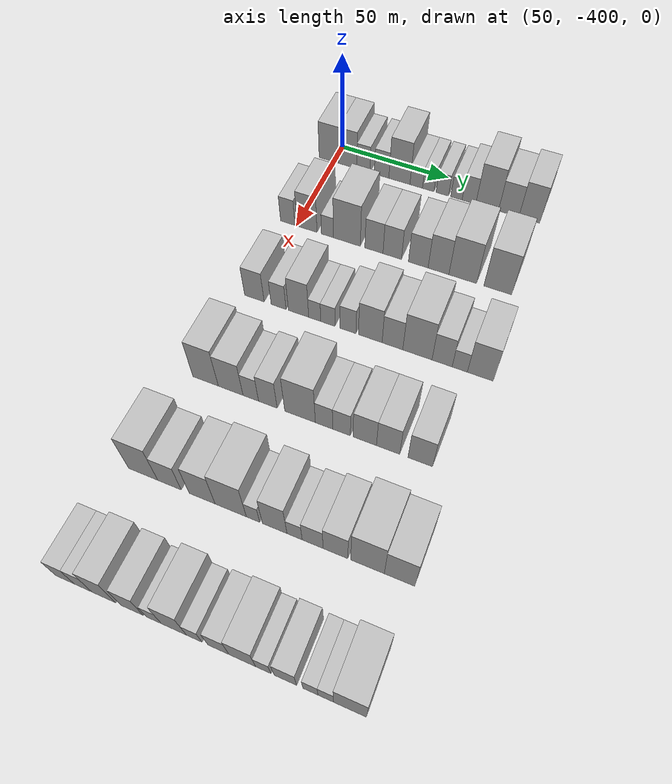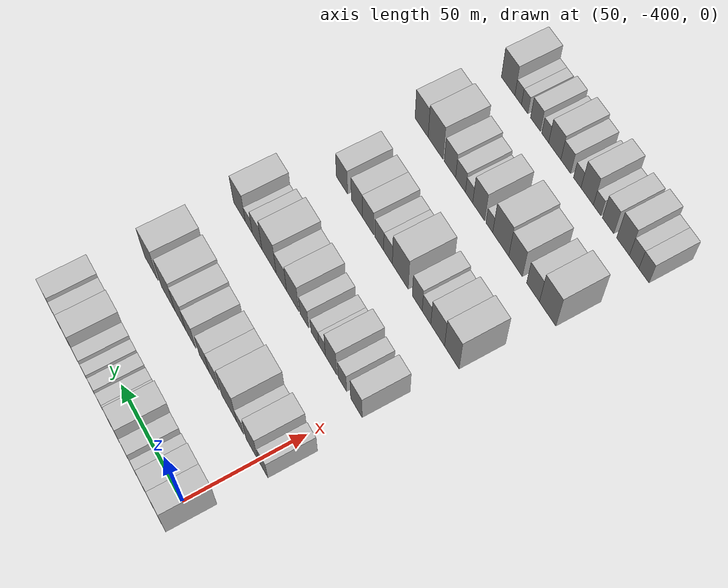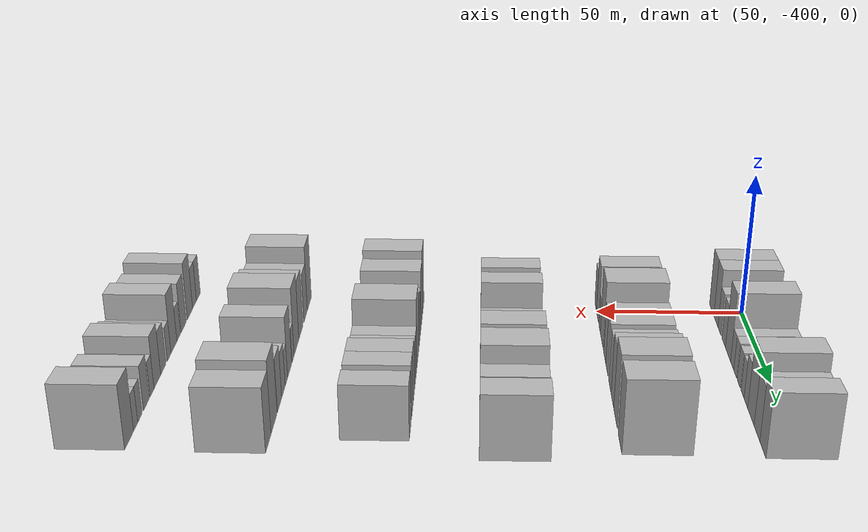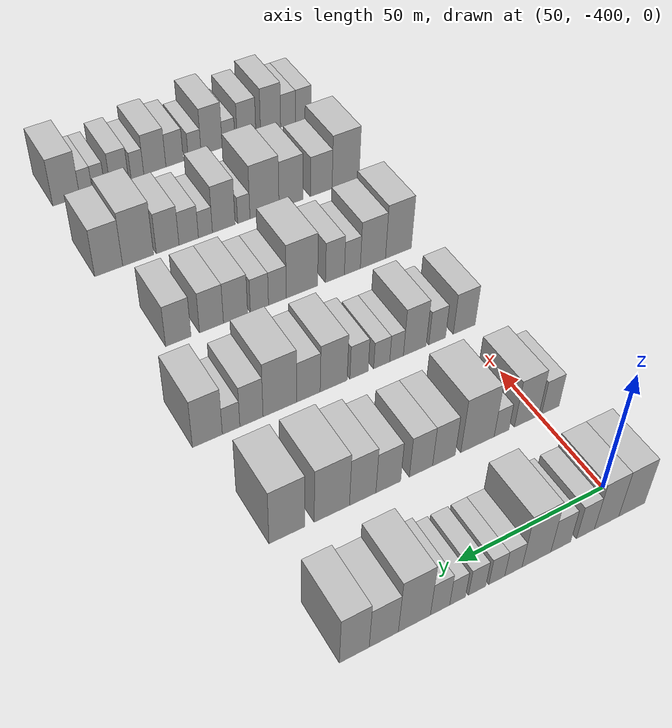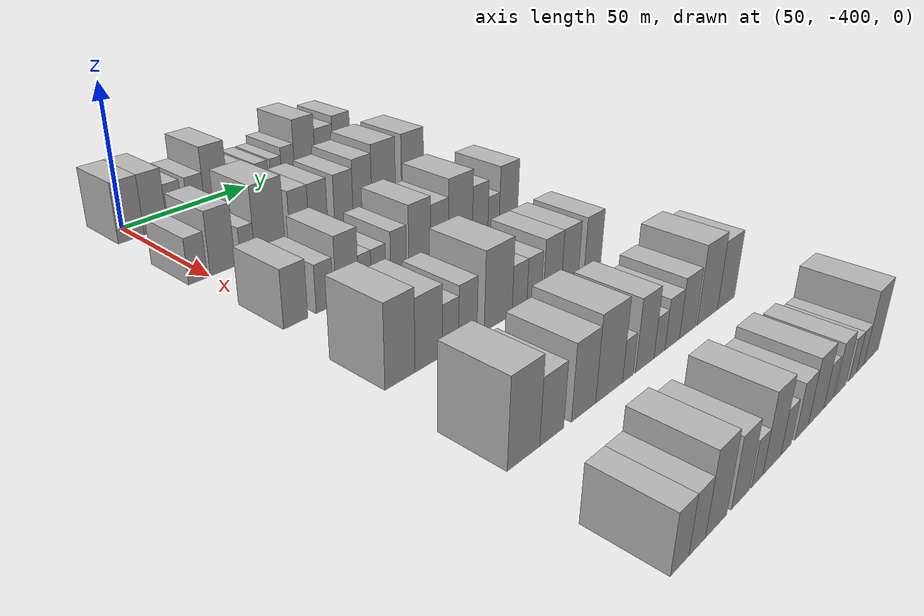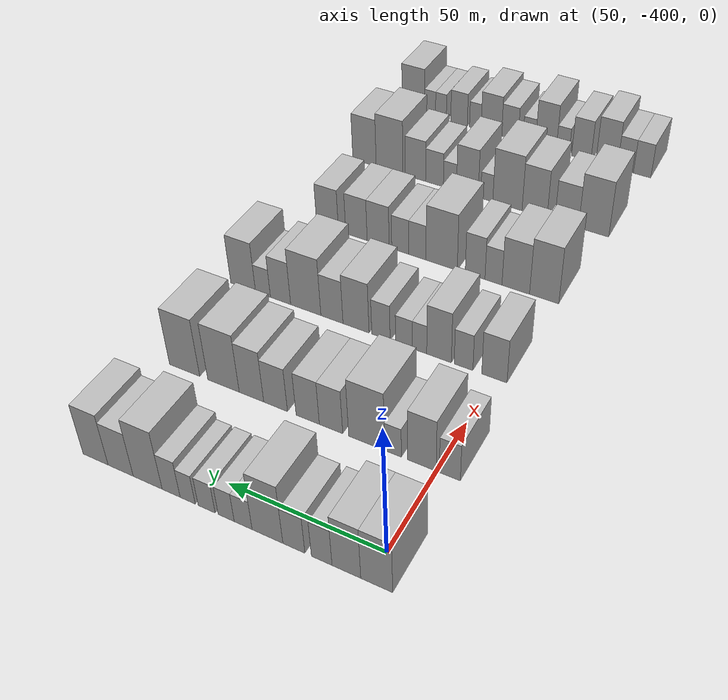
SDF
<sdf version="1.6">
 <world name="default">
  <model name="building_25">
   <static>1</static>
   <pose>50.0000 -402.3406 0 0.000000 0.000000 0.000000</pose>
   <link name="link">
    <pose>0 0 10.50 0 0 0</pose>
    <collision name="collision"><geometry><box><size>20.0000 9.3569 21.0000</size></box></geometry></collision>
    <visual name="visual">
     <cast_shadows>0</cast_shadows>
     <geometry><box><size>20.0000 9.3569 21.0000</size></box></geometry>
     <material>
      <script>
       <uri>model://HANNAS_wall/materials/scripts</uri>
       <uri>model://HANNAS_wall/materials/textures</uri>
       <name>vrc/HANNAS_wall</name>
      </script>
     </material>
    </visual>
   </link>
  </model>
  <model name="building_26">
   <static>1</static>
   <pose>50.0000 -393.3666 0 0.000000 0.000000 0.000000</pose>
   <link name="link">
    <pose>0 0 10.50 0 0 0</pose>
    <collision name="collision"><geometry><box><size>20.0000 8.5912 21.0000</size></box></geometry></collision>
    <visual name="visual">
     <cast_shadows>0</cast_shadows>
     <geometry><box><size>20.0000 8.5912 21.0000</size></box></geometry>
     <material>
      <script>
       <uri>model://HANNAS_wall/materials/scripts</uri>
       <uri>model://HANNAS_wall/materials/textures</uri>
       <name>vrc/HANNAS_wall</name>
      </script>
     </material>
    </visual>
   </link>
  </model>
  <model name="building_27">
   <static>1</static>
   <pose>50.0000 -385.9371 0 0.000000 0.000000 0.000000</pose>
   <link name="link">
    <pose>0 0 7.50 0 0 0</pose>
    <collision name="collision"><geometry><box><size>20.0000 6.2679 15.0000</size></box></geometry></collision>
    <visual name="visual">
     <cast_shadows>0</cast_shadows>
     <geometry><box><size>20.0000 6.2679 15.0000</size></box></geometry>
     <material>
      <script>
       <uri>model://HANNAS_wall/materials/scripts</uri>
       <uri>model://HANNAS_wall/materials/textures</uri>
       <name>vrc/HANNAS_wall</name>
      </script>
     </material>
    </visual>
   </link>
  </model>
  <model name="building_28">
   <static>1</static>
   <pose>50.0000 -377.3876 0 0.000000 0.000000 0.000000</pose>
   <link name="link">
    <pose>0 0 7.50 0 0 0</pose>
    <collision name="collision"><geometry><box><size>20.0000 6.8310 15.0000</size></box></geometry></collision>
    <visual name="visual">
     <cast_shadows>0</cast_shadows>
     <geometry><box><size>20.0000 6.8310 15.0000</size></box></geometry>
     <material>
      <script>
       <uri>model://HANNAS_wall/materials/scripts</uri>
       <uri>model://HANNAS_wall/materials/textures</uri>
       <name>vrc/HANNAS_wall</name>
      </script>
     </material>
    </visual>
   </link>
  </model>
  <model name="building_29">
   <static>1</static>
   <pose>50.0000 -369.1044 0 0.000000 0.000000 0.000000</pose>
   <link name="link">
    <pose>0 0 12.00 0 0 0</pose>
    <collision name="collision"><geometry><box><size>20.0000 9.7356 24.0000</size></box></geometry></collision>
    <visual name="visual">
     <cast_shadows>0</cast_shadows>
     <geometry><box><size>20.0000 9.7356 24.0000</size></box></geometry>
     <material>
      <script>
       <uri>model://HANNAS_wall/materials/scripts</uri>
       <uri>model://HANNAS_wall/materials/textures</uri>
       <name>vrc/HANNAS_wall</name>
      </script>
     </material>
    </visual>
   </link>
  </model>
  <model name="building_30">
   <static>1</static>
   <pose>50.0000 -361.3651 0 0.000000 0.000000 0.000000</pose>
   <link name="link">
    <pose>0 0 6.00 0 0 0</pose>
    <collision name="collision"><geometry><box><size>20.0000 5.7431 12.0000</size></box></geometry></collision>
    <visual name="visual">
     <cast_shadows>0</cast_shadows>
     <geometry><box><size>20.0000 5.7431 12.0000</size></box></geometry>
     <material>
      <script>
       <uri>model://HANNAS_wall/materials/scripts</uri>
       <uri>model://HANNAS_wall/materials/textures</uri>
       <name>vrc/HANNAS_wall</name>
      </script>
     </material>
    </visual>
   </link>
  </model>
  <model name="building_31">
   <static>1</static>
   <pose>50.0000 -355.8773 0 0.000000 0.000000 0.000000</pose>
   <link name="link">
    <pose>0 0 6.00 0 0 0</pose>
    <collision name="collision"><geometry><box><size>20.0000 5.2324 12.0000</size></box></geometry></collision>
    <visual name="visual">
     <cast_shadows>0</cast_shadows>
     <geometry><box><size>20.0000 5.2324 12.0000</size></box></geometry>
     <material>
      <script>
       <uri>model://HANNAS_wall/materials/scripts</uri>
       <uri>model://HANNAS_wall/materials/textures</uri>
       <name>vrc/HANNAS_wall</name>
      </script>
     </material>
    </visual>
   </link>
  </model>
  <model name="building_32">
   <static>1</static>
   <pose>50.0000 -349.4674 0 0.000000 0.000000 0.000000</pose>
   <link name="link">
    <pose>0 0 6.00 0 0 0</pose>
    <collision name="collision"><geometry><box><size>20.0000 5.5874 12.0000</size></box></geometry></collision>
    <visual name="visual">
     <cast_shadows>0</cast_shadows>
     <geometry><box><size>20.0000 5.5874 12.0000</size></box></geometry>
     <material>
      <script>
       <uri>model://HANNAS_wall/materials/scripts</uri>
       <uri>model://HANNAS_wall/materials/textures</uri>
       <name>vrc/HANNAS_wall</name>
      </script>
     </material>
    </visual>
   </link>
  </model>
  <model name="building_33">
   <static>1</static>
   <pose>50.0000 -343.1488 0 0.000000 0.000000 0.000000</pose>
   <link name="link">
    <pose>0 0 6.00 0 0 0</pose>
    <collision name="collision"><geometry><box><size>20.0000 5.0498 12.0000</size></box></geometry></collision>
    <visual name="visual">
     <cast_shadows>0</cast_shadows>
     <geometry><box><size>20.0000 5.0498 12.0000</size></box></geometry>
     <material>
      <script>
       <uri>model://HANNAS_wall/materials/scripts</uri>
       <uri>model://HANNAS_wall/materials/textures</uri>
       <name>vrc/HANNAS_wall</name>
      </script>
     </material>
    </visual>
   </link>
  </model>
  <model name="building_34">
   <static>1</static>
   <pose>50.0000 -337.5745 0 0.000000 0.000000 0.000000</pose>
   <link name="link">
    <pose>0 0 7.50 0 0 0</pose>
    <collision name="collision"><geometry><box><size>20.0000 6.0989 15.0000</size></box></geometry></collision>
    <visual name="visual">
     <cast_shadows>0</cast_shadows>
     <geometry><box><size>20.0000 6.0989 15.0000</size></box></geometry>
     <material>
      <script>
       <uri>model://HANNAS_wall/materials/scripts</uri>
       <uri>model://HANNAS_wall/materials/textures</uri>
       <name>vrc/HANNAS_wall</name>
      </script>
     </material>
    </visual>
   </link>
  </model>
  <model name="building_35">
   <static>1</static>
   <pose>50.0000 -329.5333 0 0.000000 0.000000 0.000000</pose>
   <link name="link">
    <pose>0 0 12.00 0 0 0</pose>
    <collision name="collision"><geometry><box><size>20.0000 9.9835 24.0000</size></box></geometry></collision>
    <visual name="visual">
     <cast_shadows>0</cast_shadows>
     <geometry><box><size>20.0000 9.9835 24.0000</size></box></geometry>
     <material>
      <script>
       <uri>model://HANNAS_wall/materials/scripts</uri>
       <uri>model://HANNAS_wall/materials/textures</uri>
       <name>vrc/HANNAS_wall</name>
      </script>
     </material>
    </visual>
   </link>
  </model>
  <model name="building_36">
   <static>1</static>
   <pose>50.0000 -320.1025 0 0.000000 0.000000 0.000000</pose>
   <link name="link">
    <pose>0 0 9.00 0 0 0</pose>
    <collision name="collision"><geometry><box><size>20.0000 8.8781 18.0000</size></box></geometry></collision>
    <visual name="visual">
     <cast_shadows>0</cast_shadows>
     <geometry><box><size>20.0000 8.8781 18.0000</size></box></geometry>
     <material>
      <script>
       <uri>model://HANNAS_wall/materials/scripts</uri>
       <uri>model://HANNAS_wall/materials/textures</uri>
       <name>vrc/HANNAS_wall</name>
      </script>
     </material>
    </visual>
   </link>
  </model>
  <model name="building_37">
   <static>1</static>
   <pose>50.0000 -311.1957 0 0.000000 0.000000 0.000000</pose>
   <link name="link">
    <pose>0 0 10.50 0 0 0</pose>
    <collision name="collision"><geometry><box><size>20.0000 8.9355 21.0000</size></box></geometry></collision>
    <visual name="visual">
     <cast_shadows>0</cast_shadows>
     <geometry><box><size>20.0000 8.9355 21.0000</size></box></geometry>
     <material>
      <script>
       <uri>model://HANNAS_wall/materials/scripts</uri>
       <uri>model://HANNAS_wall/materials/textures</uri>
       <name>vrc/HANNAS_wall</name>
      </script>
     </material>
    </visual>
   </link>
  </model>
  <model name="building_164">
   <static>1</static>
   <pose>90.0000 -404.1304 0 0.000000 0.000000 0.000000</pose>
   <link name="link">
    <pose>0 0 7.50 0 0 0</pose>
    <collision name="collision"><geometry><box><size>20.0000 6.5334 15.0000</size></box></geometry></collision>
    <visual name="visual">
     <cast_shadows>0</cast_shadows>
     <geometry><box><size>20.0000 6.5334 15.0000</size></box></geometry>
     <material>
      <script>
       <uri>model://HANNAS_wall/materials/scripts</uri>
       <uri>model://HANNAS_wall/materials/textures</uri>
       <name>vrc/HANNAS_wall</name>
      </script>
     </material>
    </visual>
   </link>
  </model>
  <model name="building_165">
   <static>1</static>
   <pose>90.0000 -395.3255 0 0.000000 0.000000 0.000000</pose>
   <link name="link">
    <pose>0 0 10.50 0 0 0</pose>
    <collision name="collision"><geometry><box><size>20.0000 9.0763 21.0000</size></box></geometry></collision>
    <visual name="visual">
     <cast_shadows>0</cast_shadows>
     <geometry><box><size>20.0000 9.0763 21.0000</size></box></geometry>
     <material>
      <script>
       <uri>model://HANNAS_wall/materials/scripts</uri>
       <uri>model://HANNAS_wall/materials/textures</uri>
       <name>vrc/HANNAS_wall</name>
      </script>
     </material>
    </visual>
   </link>
  </model>
  <model name="building_166">
   <static>1</static>
   <pose>90.0000 -386.1036 0 0.000000 0.000000 0.000000</pose>
   <link name="link">
    <pose>0 0 6.00 0 0 0</pose>
    <collision name="collision"><geometry><box><size>20.0000 5.3674 12.0000</size></box></geometry></collision>
    <visual name="visual">
     <cast_shadows>0</cast_shadows>
     <geometry><box><size>20.0000 5.3674 12.0000</size></box></geometry>
     <material>
      <script>
       <uri>model://HANNAS_wall/materials/scripts</uri>
       <uri>model://HANNAS_wall/materials/textures</uri>
       <name>vrc/HANNAS_wall</name>
      </script>
     </material>
    </visual>
   </link>
  </model>
  <model name="building_167">
   <static>1</static>
   <pose>90.0000 -377.4563 0 0.000000 0.000000 0.000000</pose>
   <link name="link">
    <pose>0 0 12.00 0 0 0</pose>
    <collision name="collision"><geometry><box><size>20.0000 11.9272 24.0000</size></box></geometry></collision>
    <visual name="visual">
     <cast_shadows>0</cast_shadows>
     <geometry><box><size>20.0000 11.9272 24.0000</size></box></geometry>
     <material>
      <script>
       <uri>model://HANNAS_wall/materials/scripts</uri>
       <uri>model://HANNAS_wall/materials/textures</uri>
       <name>vrc/HANNAS_wall</name>
      </script>
     </material>
    </visual>
   </link>
  </model>
  <model name="building_168">
   <static>1</static>
   <pose>90.0000 -365.5362 0 0.000000 0.000000 0.000000</pose>
   <link name="link">
    <pose>0 0 9.00 0 0 0</pose>
    <collision name="collision"><geometry><box><size>20.0000 7.9130 18.0000</size></box></geometry></collision>
    <visual name="visual">
     <cast_shadows>0</cast_shadows>
     <geometry><box><size>20.0000 7.9130 18.0000</size></box></geometry>
     <material>
      <script>
       <uri>model://HANNAS_wall/materials/scripts</uri>
       <uri>model://HANNAS_wall/materials/textures</uri>
       <name>vrc/HANNAS_wall</name>
      </script>
     </material>
    </visual>
   </link>
  </model>
  <model name="building_169">
   <static>1</static>
   <pose>90.0000 -357.5903 0 0.000000 0.000000 0.000000</pose>
   <link name="link">
    <pose>0 0 9.00 0 0 0</pose>
    <collision name="collision"><geometry><box><size>20.0000 7.9788 18.0000</size></box></geometry></collision>
    <visual name="visual">
     <cast_shadows>0</cast_shadows>
     <geometry><box><size>20.0000 7.9788 18.0000</size></box></geometry>
     <material>
      <script>
       <uri>model://HANNAS_wall/materials/scripts</uri>
       <uri>model://HANNAS_wall/materials/textures</uri>
       <name>vrc/HANNAS_wall</name>
      </script>
     </material>
    </visual>
   </link>
  </model>
  <model name="building_170">
   <static>1</static>
   <pose>90.0000 -346.4264 0 0.000000 0.000000 0.000000</pose>
   <link name="link">
    <pose>0 0 9.00 0 0 0</pose>
    <collision name="collision"><geometry><box><size>20.0000 8.3491 18.0000</size></box></geometry></collision>
    <visual name="visual">
     <cast_shadows>0</cast_shadows>
     <geometry><box><size>20.0000 8.3491 18.0000</size></box></geometry>
     <material>
      <script>
       <uri>model://HANNAS_wall/materials/scripts</uri>
       <uri>model://HANNAS_wall/materials/textures</uri>
       <name>vrc/HANNAS_wall</name>
      </script>
     </material>
    </visual>
   </link>
  </model>
  <model name="building_171">
   <static>1</static>
   <pose>90.0000 -337.8645 0 0.000000 0.000000 0.000000</pose>
   <link name="link">
    <pose>0 0 10.50 0 0 0</pose>
    <collision name="collision"><geometry><box><size>20.0000 8.7746 21.0000</size></box></geometry></collision>
    <visual name="visual">
     <cast_shadows>0</cast_shadows>
     <geometry><box><size>20.0000 8.7746 21.0000</size></box></geometry>
     <material>
      <script>
       <uri>model://HANNAS_wall/materials/scripts</uri>
       <uri>model://HANNAS_wall/materials/textures</uri>
       <name>vrc/HANNAS_wall</name>
      </script>
     </material>
    </visual>
   </link>
  </model>
  <model name="building_172">
   <static>1</static>
   <pose>90.0000 -327.7320 0 0.000000 0.000000 0.000000</pose>
   <link name="link">
    <pose>0 0 12.00 0 0 0</pose>
    <collision name="collision"><geometry><box><size>20.0000 11.4905 24.0000</size></box></geometry></collision>
    <visual name="visual">
     <cast_shadows>0</cast_shadows>
     <geometry><box><size>20.0000 11.4905 24.0000</size></box></geometry>
     <material>
      <script>
       <uri>model://HANNAS_wall/materials/scripts</uri>
       <uri>model://HANNAS_wall/materials/textures</uri>
       <name>vrc/HANNAS_wall</name>
      </script>
     </material>
    </visual>
   </link>
  </model>
  <model name="building_173">
   <static>1</static>
   <pose>90.0000 -313.3235 0 0.000000 0.000000 0.000000</pose>
   <link name="link">
    <pose>0 0 12.00 0 0 0</pose>
    <collision name="collision"><geometry><box><size>20.0000 11.3266 24.0000</size></box></geometry></collision>
    <visual name="visual">
     <cast_shadows>0</cast_shadows>
     <geometry><box><size>20.0000 11.3266 24.0000</size></box></geometry>
     <material>
      <script>
       <uri>model://HANNAS_wall/materials/scripts</uri>
       <uri>model://HANNAS_wall/materials/textures</uri>
       <name>vrc/HANNAS_wall</name>
      </script>
     </material>
    </visual>
   </link>
  </model>
  <model name="building_303">
   <static>1</static>
   <pose>130.0000 -400.1069 0 0.000000 0.000000 0.000000</pose>
   <link name="link">
    <pose>0 0 9.00 0 0 0</pose>
    <collision name="collision"><geometry><box><size>20.0000 8.4470 18.0000</size></box></geometry></collision>
    <visual name="visual">
     <cast_shadows>0</cast_shadows>
     <geometry><box><size>20.0000 8.4470 18.0000</size></box></geometry>
     <material>
      <script>
       <uri>model://HANNAS_wall/materials/scripts</uri>
       <uri>model://HANNAS_wall/materials/textures</uri>
       <name>vrc/HANNAS_wall</name>
      </script>
     </material>
    </visual>
   </link>
  </model>
  <model name="building_304">
   <static>1</static>
   <pose>130.0000 -389.7032 0 0.000000 0.000000 0.000000</pose>
   <link name="link">
    <pose>0 0 7.50 0 0 0</pose>
    <collision name="collision"><geometry><box><size>20.0000 6.3603 15.0000</size></box></geometry></collision>
    <visual name="visual">
     <cast_shadows>0</cast_shadows>
     <geometry><box><size>20.0000 6.3603 15.0000</size></box></geometry>
     <material>
      <script>
       <uri>model://HANNAS_wall/materials/scripts</uri>
       <uri>model://HANNAS_wall/materials/textures</uri>
       <name>vrc/HANNAS_wall</name>
      </script>
     </material>
    </visual>
   </link>
  </model>
  <model name="building_305">
   <static>1</static>
   <pose>130.0000 -381.2488 0 0.000000 0.000000 0.000000</pose>
   <link name="link">
    <pose>0 0 10.50 0 0 0</pose>
    <collision name="collision"><geometry><box><size>20.0000 8.5486 21.0000</size></box></geometry></collision>
    <visual name="visual">
     <cast_shadows>0</cast_shadows>
     <geometry><box><size>20.0000 8.5486 21.0000</size></box></geometry>
     <material>
      <script>
       <uri>model://HANNAS_wall/materials/scripts</uri>
       <uri>model://HANNAS_wall/materials/textures</uri>
       <name>vrc/HANNAS_wall</name>
      </script>
     </material>
    </visual>
   </link>
  </model>
  <model name="building_306">
   <static>1</static>
   <pose>130.0000 -374.4454 0 0.000000 0.000000 0.000000</pose>
   <link name="link">
    <pose>0 0 6.00 0 0 0</pose>
    <collision name="collision"><geometry><box><size>20.0000 5.0581 12.0000</size></box></geometry></collision>
    <visual name="visual">
     <cast_shadows>0</cast_shadows>
     <geometry><box><size>20.0000 5.0581 12.0000</size></box></geometry>
     <material>
      <script>
       <uri>model://HANNAS_wall/materials/scripts</uri>
       <uri>model://HANNAS_wall/materials/textures</uri>
       <name>vrc/HANNAS_wall</name>
      </script>
     </material>
    </visual>
   </link>
  </model>
  <model name="building_307">
   <static>1</static>
   <pose>130.0000 -368.9524 0 0.000000 0.000000 0.000000</pose>
   <link name="link">
    <pose>0 0 6.00 0 0 0</pose>
    <collision name="collision"><geometry><box><size>20.0000 5.9278 12.0000</size></box></geometry></collision>
    <visual name="visual">
     <cast_shadows>0</cast_shadows>
     <geometry><box><size>20.0000 5.9278 12.0000</size></box></geometry>
     <material>
      <script>
       <uri>model://HANNAS_wall/materials/scripts</uri>
       <uri>model://HANNAS_wall/materials/textures</uri>
       <name>vrc/HANNAS_wall</name>
      </script>
     </material>
    </visual>
   </link>
  </model>
  <model name="building_308">
   <static>1</static>
   <pose>130.0000 -360.6878 0 0.000000 0.000000 0.000000</pose>
   <link name="link">
    <pose>0 0 7.50 0 0 0</pose>
    <collision name="collision"><geometry><box><size>20.0000 6.6016 15.0000</size></box></geometry></collision>
    <visual name="visual">
     <cast_shadows>0</cast_shadows>
     <geometry><box><size>20.0000 6.6016 15.0000</size></box></geometry>
     <material>
      <script>
       <uri>model://HANNAS_wall/materials/scripts</uri>
       <uri>model://HANNAS_wall/materials/textures</uri>
       <name>vrc/HANNAS_wall</name>
      </script>
     </material>
    </visual>
   </link>
  </model>
  <model name="building_309">
   <static>1</static>
   <pose>130.0000 -351.5949 0 0.000000 0.000000 0.000000</pose>
   <link name="link">
    <pose>0 0 10.50 0 0 0</pose>
    <collision name="collision"><geometry><box><size>20.0000 9.5842 21.0000</size></box></geometry></collision>
    <visual name="visual">
     <cast_shadows>0</cast_shadows>
     <geometry><box><size>20.0000 9.5842 21.0000</size></box></geometry>
     <material>
      <script>
       <uri>model://HANNAS_wall/materials/scripts</uri>
       <uri>model://HANNAS_wall/materials/textures</uri>
       <name>vrc/HANNAS_wall</name>
      </script>
     </material>
    </visual>
   </link>
  </model>
  <model name="building_310">
   <static>1</static>
   <pose>130.0000 -342.6700 0 0.000000 0.000000 0.000000</pose>
   <link name="link">
    <pose>0 0 9.00 0 0 0</pose>
    <collision name="collision"><geometry><box><size>20.0000 8.2657 18.0000</size></box></geometry></collision>
    <visual name="visual">
     <cast_shadows>0</cast_shadows>
     <geometry><box><size>20.0000 8.2657 18.0000</size></box></geometry>
     <material>
      <script>
       <uri>model://HANNAS_wall/materials/scripts</uri>
       <uri>model://HANNAS_wall/materials/textures</uri>
       <name>vrc/HANNAS_wall</name>
      </script>
     </material>
    </visual>
   </link>
  </model>
  <model name="building_311">
   <static>1</static>
   <pose>130.0000 -332.7740 0 0.000000 0.000000 0.000000</pose>
   <link name="link">
    <pose>0 0 12.00 0 0 0</pose>
    <collision name="collision"><geometry><box><size>20.0000 11.5263 24.0000</size></box></geometry></collision>
    <visual name="visual">
     <cast_shadows>0</cast_shadows>
     <geometry><box><size>20.0000 11.5263 24.0000</size></box></geometry>
     <material>
      <script>
       <uri>model://HANNAS_wall/materials/scripts</uri>
       <uri>model://HANNAS_wall/materials/textures</uri>
       <name>vrc/HANNAS_wall</name>
      </script>
     </material>
    </visual>
   </link>
  </model>
  <model name="building_312">
   <static>1</static>
   <pose>130.0000 -323.0928 0 0.000000 0.000000 0.000000</pose>
   <link name="link">
    <pose>0 0 9.00 0 0 0</pose>
    <collision name="collision"><geometry><box><size>20.0000 7.8361 18.0000</size></box></geometry></collision>
    <visual name="visual">
     <cast_shadows>0</cast_shadows>
     <geometry><box><size>20.0000 7.8361 18.0000</size></box></geometry>
     <material>
      <script>
       <uri>model://HANNAS_wall/materials/scripts</uri>
       <uri>model://HANNAS_wall/materials/textures</uri>
       <name>vrc/HANNAS_wall</name>
      </script>
     </material>
    </visual>
   </link>
  </model>
  <model name="building_313">
   <static>1</static>
   <pose>130.0000 -316.2505 0 0.000000 0.000000 0.000000</pose>
   <link name="link">
    <pose>0 0 6.00 0 0 0</pose>
    <collision name="collision"><geometry><box><size>20.0000 5.8485 12.0000</size></box></geometry></collision>
    <visual name="visual">
     <cast_shadows>0</cast_shadows>
     <geometry><box><size>20.0000 5.8485 12.0000</size></box></geometry>
     <material>
      <script>
       <uri>model://HANNAS_wall/materials/scripts</uri>
       <uri>model://HANNAS_wall/materials/textures</uri>
       <name>vrc/HANNAS_wall</name>
      </script>
     </material>
    </visual>
   </link>
  </model>
  <model name="building_314">
   <static>1</static>
   <pose>130.0000 -308.4026 0 0.000000 0.000000 0.000000</pose>
   <link name="link">
    <pose>0 0 10.50 0 0 0</pose>
    <collision name="collision"><geometry><box><size>20.0000 9.8472 21.0000</size></box></geometry></collision>
    <visual name="visual">
     <cast_shadows>0</cast_shadows>
     <geometry><box><size>20.0000 9.8472 21.0000</size></box></geometry>
     <material>
      <script>
       <uri>model://HANNAS_wall/materials/scripts</uri>
       <uri>model://HANNAS_wall/materials/textures</uri>
       <name>vrc/HANNAS_wall</name>
      </script>
     </material>
    </visual>
   </link>
  </model>
  <model name="building_445">
   <static>1</static>
   <pose>170.0000 -400.4089 0 0.000000 0.000000 0.000000</pose>
   <link name="link">
    <pose>0 0 12.00 0 0 0</pose>
    <collision name="collision"><geometry><box><size>20.0000 10.3820 24.0000</size></box></geometry></collision>
    <visual name="visual">
     <cast_shadows>0</cast_shadows>
     <geometry><box><size>20.0000 10.3820 24.0000</size></box></geometry>
     <material>
      <script>
       <uri>model://HANNAS_wall/materials/scripts</uri>
       <uri>model://HANNAS_wall/materials/textures</uri>
       <name>vrc/HANNAS_wall</name>
      </script>
     </material>
    </visual>
   </link>
  </model>
  <model name="building_446">
   <static>1</static>
   <pose>170.0000 -390.2303 0 0.000000 0.000000 0.000000</pose>
   <link name="link">
    <pose>0 0 10.50 0 0 0</pose>
    <collision name="collision"><geometry><box><size>20.0000 9.9750 21.0000</size></box></geometry></collision>
    <visual name="visual">
     <cast_shadows>0</cast_shadows>
     <geometry><box><size>20.0000 9.9750 21.0000</size></box></geometry>
     <material>
      <script>
       <uri>model://HANNAS_wall/materials/scripts</uri>
       <uri>model://HANNAS_wall/materials/textures</uri>
       <name>vrc/HANNAS_wall</name>
      </script>
     </material>
    </visual>
   </link>
  </model>
  <model name="building_447">
   <static>1</static>
   <pose>170.0000 -382.1222 0 0.000000 0.000000 0.000000</pose>
   <link name="link">
    <pose>0 0 7.50 0 0 0</pose>
    <collision name="collision"><geometry><box><size>20.0000 6.2413 15.0000</size></box></geometry></collision>
    <visual name="visual">
     <cast_shadows>0</cast_shadows>
     <geometry><box><size>20.0000 6.2413 15.0000</size></box></geometry>
     <material>
      <script>
       <uri>model://HANNAS_wall/materials/scripts</uri>
       <uri>model://HANNAS_wall/materials/textures</uri>
       <name>vrc/HANNAS_wall</name>
      </script>
     </material>
    </visual>
   </link>
  </model>
  <model name="building_448">
   <static>1</static>
   <pose>170.0000 -375.3404 0 0.000000 0.000000 0.000000</pose>
   <link name="link">
    <pose>0 0 9.00 0 0 0</pose>
    <collision name="collision"><geometry><box><size>20.0000 7.3223 18.0000</size></box></geometry></collision>
    <visual name="visual">
     <cast_shadows>0</cast_shadows>
     <geometry><box><size>20.0000 7.3223 18.0000</size></box></geometry>
     <material>
      <script>
       <uri>model://HANNAS_wall/materials/scripts</uri>
       <uri>model://HANNAS_wall/materials/textures</uri>
       <name>vrc/HANNAS_wall</name>
      </script>
     </material>
    </visual>
   </link>
  </model>
  <model name="building_449">
   <static>1</static>
   <pose>170.0000 -362.7413 0 0.000000 0.000000 0.000000</pose>
   <link name="link">
    <pose>0 0 12.00 0 0 0</pose>
    <collision name="collision"><geometry><box><size>20.0000 11.8760 24.0000</size></box></geometry></collision>
    <visual name="visual">
     <cast_shadows>0</cast_shadows>
     <geometry><box><size>20.0000 11.8760 24.0000</size></box></geometry>
     <material>
      <script>
       <uri>model://HANNAS_wall/materials/scripts</uri>
       <uri>model://HANNAS_wall/materials/textures</uri>
       <name>vrc/HANNAS_wall</name>
      </script>
     </material>
    </visual>
   </link>
  </model>
  <model name="building_450">
   <static>1</static>
   <pose>170.0000 -353.4921 0 0.000000 0.000000 0.000000</pose>
   <link name="link">
    <pose>0 0 7.50 0 0 0</pose>
    <collision name="collision"><geometry><box><size>20.0000 6.6224 15.0000</size></box></geometry></collision>
    <visual name="visual">
     <cast_shadows>0</cast_shadows>
     <geometry><box><size>20.0000 6.6224 15.0000</size></box></geometry>
     <material>
      <script>
       <uri>model://HANNAS_wall/materials/scripts</uri>
       <uri>model://HANNAS_wall/materials/textures</uri>
       <name>vrc/HANNAS_wall</name>
      </script>
     </material>
    </visual>
   </link>
  </model>
  <model name="building_451">
   <static>1</static>
   <pose>170.0000 -346.8442 0 0.000000 0.000000 0.000000</pose>
   <link name="link">
    <pose>0 0 7.50 0 0 0</pose>
    <collision name="collision"><geometry><box><size>20.0000 6.6734 15.0000</size></box></geometry></collision>
    <visual name="visual">
     <cast_shadows>0</cast_shadows>
     <geometry><box><size>20.0000 6.6734 15.0000</size></box></geometry>
     <material>
      <script>
       <uri>model://HANNAS_wall/materials/scripts</uri>
       <uri>model://HANNAS_wall/materials/textures</uri>
       <name>vrc/HANNAS_wall</name>
      </script>
     </material>
    </visual>
   </link>
  </model>
  <model name="building_452">
   <static>1</static>
   <pose>170.0000 -338.1260 0 0.000000 0.000000 0.000000</pose>
   <link name="link">
    <pose>0 0 9.00 0 0 0</pose>
    <collision name="collision"><geometry><box><size>20.0000 8.7629 18.0000</size></box></geometry></collision>
    <visual name="visual">
     <cast_shadows>0</cast_shadows>
     <geometry><box><size>20.0000 8.7629 18.0000</size></box></geometry>
     <material>
      <script>
       <uri>model://HANNAS_wall/materials/scripts</uri>
       <uri>model://HANNAS_wall/materials/textures</uri>
       <name>vrc/HANNAS_wall</name>
      </script>
     </material>
    </visual>
   </link>
  </model>
  <model name="building_453">
   <static>1</static>
   <pose>170.0000 -329.4504 0 0.000000 0.000000 0.000000</pose>
   <link name="link">
    <pose>0 0 9.00 0 0 0</pose>
    <collision name="collision"><geometry><box><size>20.0000 8.5882 18.0000</size></box></geometry></collision>
    <visual name="visual">
     <cast_shadows>0</cast_shadows>
     <geometry><box><size>20.0000 8.5882 18.0000</size></box></geometry>
     <material>
      <script>
       <uri>model://HANNAS_wall/materials/scripts</uri>
       <uri>model://HANNAS_wall/materials/textures</uri>
       <name>vrc/HANNAS_wall</name>
      </script>
     </material>
    </visual>
   </link>
  </model>
  <model name="building_454">
   <static>1</static>
   <pose>170.0000 -317.6877 0 0.000000 0.000000 0.000000</pose>
   <link name="link">
    <pose>0 0 9.00 0 0 0</pose>
    <collision name="collision"><geometry><box><size>20.0000 8.9372 18.0000</size></box></geometry></collision>
    <visual name="visual">
     <cast_shadows>0</cast_shadows>
     <geometry><box><size>20.0000 8.9372 18.0000</size></box></geometry>
     <material>
      <script>
       <uri>model://HANNAS_wall/materials/scripts</uri>
       <uri>model://HANNAS_wall/materials/textures</uri>
       <name>vrc/HANNAS_wall</name>
      </script>
     </material>
    </visual>
   </link>
  </model>
  <model name="building_587">
   <static>1</static>
   <pose>210.0000 -403.1159 0 0.000000 0.000000 0.000000</pose>
   <link name="link">
    <pose>0 0 12.00 0 0 0</pose>
    <collision name="collision"><geometry><box><size>20.0000 11.3386 24.0000</size></box></geometry></collision>
    <visual name="visual">
     <cast_shadows>0</cast_shadows>
     <geometry><box><size>20.0000 11.3386 24.0000</size></box></geometry>
     <material>
      <script>
       <uri>model://HANNAS_wall/materials/scripts</uri>
       <uri>model://HANNAS_wall/materials/textures</uri>
       <name>vrc/HANNAS_wall</name>
      </script>
     </material>
    </visual>
   </link>
  </model>
  <model name="building_588">
   <static>1</static>
   <pose>210.0000 -392.9567 0 0.000000 0.000000 0.000000</pose>
   <link name="link">
    <pose>0 0 9.00 0 0 0</pose>
    <collision name="collision"><geometry><box><size>20.0000 8.9799 18.0000</size></box></geometry></collision>
    <visual name="visual">
     <cast_shadows>0</cast_shadows>
     <geometry><box><size>20.0000 8.9799 18.0000</size></box></geometry>
     <material>
      <script>
       <uri>model://HANNAS_wall/materials/scripts</uri>
       <uri>model://HANNAS_wall/materials/textures</uri>
       <name>vrc/HANNAS_wall</name>
      </script>
     </material>
    </visual>
   </link>
  </model>
  <model name="building_589">
   <static>1</static>
   <pose>210.0000 -380.6030 0 0.000000 0.000000 0.000000</pose>
   <link name="link">
    <pose>0 0 10.50 0 0 0</pose>
    <collision name="collision"><geometry><box><size>20.0000 9.7274 21.0000</size></box></geometry></collision>
    <visual name="visual">
     <cast_shadows>0</cast_shadows>
     <geometry><box><size>20.0000 9.7274 21.0000</size></box></geometry>
     <material>
      <script>
       <uri>model://HANNAS_wall/materials/scripts</uri>
       <uri>model://HANNAS_wall/materials/textures</uri>
       <name>vrc/HANNAS_wall</name>
      </script>
     </material>
    </visual>
   </link>
  </model>
  <model name="building_590">
   <static>1</static>
   <pose>210.0000 -369.9536 0 0.000000 0.000000 0.000000</pose>
   <link name="link">
    <pose>0 0 12.00 0 0 0</pose>
    <collision name="collision"><geometry><box><size>20.0000 11.5715 24.0000</size></box></geometry></collision>
    <visual name="visual">
     <cast_shadows>0</cast_shadows>
     <geometry><box><size>20.0000 11.5715 24.0000</size></box></geometry>
     <material>
      <script>
       <uri>model://HANNAS_wall/materials/scripts</uri>
       <uri>model://HANNAS_wall/materials/textures</uri>
       <name>vrc/HANNAS_wall</name>
      </script>
     </material>
    </visual>
   </link>
  </model>
  <model name="building_591">
   <static>1</static>
   <pose>210.0000 -361.7302 0 0.000000 0.000000 0.000000</pose>
   <link name="link">
    <pose>0 0 6.00 0 0 0</pose>
    <collision name="collision"><geometry><box><size>20.0000 4.8753 12.0000</size></box></geometry></collision>
    <visual name="visual">
     <cast_shadows>0</cast_shadows>
     <geometry><box><size>20.0000 4.8753 12.0000</size></box></geometry>
     <material>
      <script>
       <uri>model://HANNAS_wall/materials/scripts</uri>
       <uri>model://HANNAS_wall/materials/textures</uri>
       <name>vrc/HANNAS_wall</name>
      </script>
     </material>
    </visual>
   </link>
  </model>
  <model name="building_592">
   <static>1</static>
   <pose>210.0000 -353.8933 0 0.000000 0.000000 0.000000</pose>
   <link name="link">
    <pose>0 0 10.50 0 0 0</pose>
    <collision name="collision"><geometry><box><size>20.0000 8.7984 21.0000</size></box></geometry></collision>
    <visual name="visual">
     <cast_shadows>0</cast_shadows>
     <geometry><box><size>20.0000 8.7984 21.0000</size></box></geometry>
     <material>
      <script>
       <uri>model://HANNAS_wall/materials/scripts</uri>
       <uri>model://HANNAS_wall/materials/textures</uri>
       <name>vrc/HANNAS_wall</name>
      </script>
     </material>
    </visual>
   </link>
  </model>
  <model name="building_593">
   <static>1</static>
   <pose>210.0000 -346.7994 0 0.000000 0.000000 0.000000</pose>
   <link name="link">
    <pose>0 0 6.00 0 0 0</pose>
    <collision name="collision"><geometry><box><size>20.0000 5.3895 12.0000</size></box></geometry></collision>
    <visual name="visual">
     <cast_shadows>0</cast_shadows>
     <geometry><box><size>20.0000 5.3895 12.0000</size></box></geometry>
     <material>
      <script>
       <uri>model://HANNAS_wall/materials/scripts</uri>
       <uri>model://HANNAS_wall/materials/textures</uri>
       <name>vrc/HANNAS_wall</name>
      </script>
     </material>
    </visual>
   </link>
  </model>
  <model name="building_594">
   <static>1</static>
   <pose>210.0000 -340.4112 0 0.000000 0.000000 0.000000</pose>
   <link name="link">
    <pose>0 0 7.50 0 0 0</pose>
    <collision name="collision"><geometry><box><size>20.0000 7.3868 15.0000</size></box></geometry></collision>
    <visual name="visual">
     <cast_shadows>0</cast_shadows>
     <geometry><box><size>20.0000 7.3868 15.0000</size></box></geometry>
     <material>
      <script>
       <uri>model://HANNAS_wall/materials/scripts</uri>
       <uri>model://HANNAS_wall/materials/textures</uri>
       <name>vrc/HANNAS_wall</name>
      </script>
     </material>
    </visual>
   </link>
  </model>
  <model name="building_595">
   <static>1</static>
   <pose>210.0000 -332.4451 0 0.000000 0.000000 0.000000</pose>
   <link name="link">
    <pose>0 0 9.00 0 0 0</pose>
    <collision name="collision"><geometry><box><size>20.0000 8.5454 18.0000</size></box></geometry></collision>
    <visual name="visual">
     <cast_shadows>0</cast_shadows>
     <geometry><box><size>20.0000 8.5454 18.0000</size></box></geometry>
     <material>
      <script>
       <uri>model://HANNAS_wall/materials/scripts</uri>
       <uri>model://HANNAS_wall/materials/textures</uri>
       <name>vrc/HANNAS_wall</name>
      </script>
     </material>
    </visual>
   </link>
  </model>
  <model name="building_596">
   <static>1</static>
   <pose>210.0000 -321.4595 0 0.000000 0.000000 0.000000</pose>
   <link name="link">
    <pose>0 0 12.00 0 0 0</pose>
    <collision name="collision"><geometry><box><size>20.0000 11.4259 24.0000</size></box></geometry></collision>
    <visual name="visual">
     <cast_shadows>0</cast_shadows>
     <geometry><box><size>20.0000 11.4259 24.0000</size></box></geometry>
     <material>
      <script>
       <uri>model://HANNAS_wall/materials/scripts</uri>
       <uri>model://HANNAS_wall/materials/textures</uri>
       <name>vrc/HANNAS_wall</name>
      </script>
     </material>
    </visual>
   </link>
  </model>
  <model name="building_597">
   <static>1</static>
   <pose>210.0000 -310.6579 0 0.000000 0.000000 0.000000</pose>
   <link name="link">
    <pose>0 0 10.50 0 0 0</pose>
    <collision name="collision"><geometry><box><size>20.0000 10.1773 21.0000</size></box></geometry></collision>
    <visual name="visual">
     <cast_shadows>0</cast_shadows>
     <geometry><box><size>20.0000 10.1773 21.0000</size></box></geometry>
     <material>
      <script>
       <uri>model://HANNAS_wall/materials/scripts</uri>
       <uri>model://HANNAS_wall/materials/textures</uri>
       <name>vrc/HANNAS_wall</name>
      </script>
     </material>
    </visual>
   </link>
  </model>
  <model name="building_725">
   <static>1</static>
   <pose>250.0000 -407.8674 0 0.000000 0.000000 0.000000</pose>
   <link name="link">
    <pose>0 0 7.50 0 0 0</pose>
    <collision name="collision"><geometry><box><size>20.0000 6.8191 15.0000</size></box></geometry></collision>
    <visual name="visual">
     <cast_shadows>0</cast_shadows>
     <geometry><box><size>20.0000 6.8191 15.0000</size></box></geometry>
     <material>
      <script>
       <uri>model://HANNAS_wall/materials/scripts</uri>
       <uri>model://HANNAS_wall/materials/textures</uri>
       <name>vrc/HANNAS_wall</name>
      </script>
     </material>
    </visual>
   </link>
  </model>
  <model name="building_726">
   <static>1</static>
   <pose>250.0000 -401.2615 0 0.000000 0.000000 0.000000</pose>
   <link name="link">
    <pose>0 0 7.50 0 0 0</pose>
    <collision name="collision"><geometry><box><size>20.0000 6.3926 15.0000</size></box></geometry></collision>
    <visual name="visual">
     <cast_shadows>0</cast_shadows>
     <geometry><box><size>20.0000 6.3926 15.0000</size></box></geometry>
     <material>
      <script>
       <uri>model://HANNAS_wall/materials/scripts</uri>
       <uri>model://HANNAS_wall/materials/textures</uri>
       <name>vrc/HANNAS_wall</name>
      </script>
     </material>
    </visual>
   </link>
  </model>
  <model name="building_727">
   <static>1</static>
   <pose>250.0000 -393.7558 0 0.000000 0.000000 0.000000</pose>
   <link name="link">
    <pose>0 0 10.50 0 0 0</pose>
    <collision name="collision"><geometry><box><size>20.0000 8.6188 21.0000</size></box></geometry></collision>
    <visual name="visual">
     <cast_shadows>0</cast_shadows>
     <geometry><box><size>20.0000 8.6188 21.0000</size></box></geometry>
     <material>
      <script>
       <uri>model://HANNAS_wall/materials/scripts</uri>
       <uri>model://HANNAS_wall/materials/textures</uri>
       <name>vrc/HANNAS_wall</name>
      </script>
     </material>
    </visual>
   </link>
  </model>
  <model name="building_728">
   <static>1</static>
   <pose>250.0000 -383.5212 0 0.000000 0.000000 0.000000</pose>
   <link name="link">
    <pose>0 0 9.00 0 0 0</pose>
    <collision name="collision"><geometry><box><size>20.0000 7.8504 18.0000</size></box></geometry></collision>
    <visual name="visual">
     <cast_shadows>0</cast_shadows>
     <geometry><box><size>20.0000 7.8504 18.0000</size></box></geometry>
     <material>
      <script>
       <uri>model://HANNAS_wall/materials/scripts</uri>
       <uri>model://HANNAS_wall/materials/textures</uri>
       <name>vrc/HANNAS_wall</name>
      </script>
     </material>
    </visual>
   </link>
  </model>
  <model name="building_729">
   <static>1</static>
   <pose>250.0000 -375.9341 0 0.000000 0.000000 0.000000</pose>
   <link name="link">
    <pose>0 0 6.00 0 0 0</pose>
    <collision name="collision"><geometry><box><size>20.0000 5.3238 12.0000</size></box></geometry></collision>
    <visual name="visual">
     <cast_shadows>0</cast_shadows>
     <geometry><box><size>20.0000 5.3238 12.0000</size></box></geometry>
     <material>
      <script>
       <uri>model://HANNAS_wall/materials/scripts</uri>
       <uri>model://HANNAS_wall/materials/textures</uri>
       <name>vrc/HANNAS_wall</name>
      </script>
     </material>
    </visual>
   </link>
  </model>
  <model name="building_730">
   <static>1</static>
   <pose>250.0000 -368.9263 0 0.000000 0.000000 0.000000</pose>
   <link name="link">
    <pose>0 0 10.50 0 0 0</pose>
    <collision name="collision"><geometry><box><size>20.0000 8.6920 21.0000</size></box></geometry></collision>
    <visual name="visual">
     <cast_shadows>0</cast_shadows>
     <geometry><box><size>20.0000 8.6920 21.0000</size></box></geometry>
     <material>
      <script>
       <uri>model://HANNAS_wall/materials/scripts</uri>
       <uri>model://HANNAS_wall/materials/textures</uri>
       <name>vrc/HANNAS_wall</name>
      </script>
     </material>
    </visual>
   </link>
  </model>
  <model name="building_731">
   <static>1</static>
   <pose>250.0000 -361.9319 0 0.000000 0.000000 0.000000</pose>
   <link name="link">
    <pose>0 0 6.00 0 0 0</pose>
    <collision name="collision"><geometry><box><size>20.0000 5.2967 12.0000</size></box></geometry></collision>
    <visual name="visual">
     <cast_shadows>0</cast_shadows>
     <geometry><box><size>20.0000 5.2967 12.0000</size></box></geometry>
     <material>
      <script>
       <uri>model://HANNAS_wall/materials/scripts</uri>
       <uri>model://HANNAS_wall/materials/textures</uri>
       <name>vrc/HANNAS_wall</name>
      </script>
     </material>
    </visual>
   </link>
  </model>
  <model name="building_732">
   <static>1</static>
   <pose>250.0000 -353.7487 0 0.000000 0.000000 0.000000</pose>
   <link name="link">
    <pose>0 0 7.50 0 0 0</pose>
    <collision name="collision"><geometry><box><size>20.0000 7.0697 15.0000</size></box></geometry></collision>
    <visual name="visual">
     <cast_shadows>0</cast_shadows>
     <geometry><box><size>20.0000 7.0697 15.0000</size></box></geometry>
     <material>
      <script>
       <uri>model://HANNAS_wall/materials/scripts</uri>
       <uri>model://HANNAS_wall/materials/textures</uri>
       <name>vrc/HANNAS_wall</name>
      </script>
     </material>
    </visual>
   </link>
  </model>
  <model name="building_733">
   <static>1</static>
   <pose>250.0000 -345.7845 0 0.000000 0.000000 0.000000</pose>
   <link name="link">
    <pose>0 0 9.00 0 0 0</pose>
    <collision name="collision"><geometry><box><size>20.0000 8.8587 18.0000</size></box></geometry></collision>
    <visual name="visual">
     <cast_shadows>0</cast_shadows>
     <geometry><box><size>20.0000 8.8587 18.0000</size></box></geometry>
     <material>
      <script>
       <uri>model://HANNAS_wall/materials/scripts</uri>
       <uri>model://HANNAS_wall/materials/textures</uri>
       <name>vrc/HANNAS_wall</name>
      </script>
     </material>
    </visual>
   </link>
  </model>
  <model name="building_734">
   <static>1</static>
   <pose>250.0000 -338.8461 0 0.000000 0.000000 0.000000</pose>
   <link name="link">
    <pose>0 0 6.00 0 0 0</pose>
    <collision name="collision"><geometry><box><size>20.0000 5.0183 12.0000</size></box></geometry></collision>
    <visual name="visual">
     <cast_shadows>0</cast_shadows>
     <geometry><box><size>20.0000 5.0183 12.0000</size></box></geometry>
     <material>
      <script>
       <uri>model://HANNAS_wall/materials/scripts</uri>
       <uri>model://HANNAS_wall/materials/textures</uri>
       <name>vrc/HANNAS_wall</name>
      </script>
     </material>
    </visual>
   </link>
  </model>
  <model name="building_735">
   <static>1</static>
   <pose>250.0000 -331.6993 0 0.000000 0.000000 0.000000</pose>
   <link name="link">
    <pose>0 0 7.50 0 0 0</pose>
    <collision name="collision"><geometry><box><size>20.0000 7.2752 15.0000</size></box></geometry></collision>
    <visual name="visual">
     <cast_shadows>0</cast_shadows>
     <geometry><box><size>20.0000 7.2752 15.0000</size></box></geometry>
     <material>
      <script>
       <uri>model://HANNAS_wall/materials/scripts</uri>
       <uri>model://HANNAS_wall/materials/textures</uri>
       <name>vrc/HANNAS_wall</name>
      </script>
     </material>
    </visual>
   </link>
  </model>
  <model name="building_736">
   <static>1</static>
   <pose>250.0000 -323.6614 0 0.000000 0.000000 0.000000</pose>
   <link name="link">
    <pose>0 0 6.00 0 0 0</pose>
    <collision name="collision"><geometry><box><size>20.0000 4.8006 12.0000</size></box></geometry></collision>
    <visual name="visual">
     <cast_shadows>0</cast_shadows>
     <geometry><box><size>20.0000 4.8006 12.0000</size></box></geometry>
     <material>
      <script>
       <uri>model://HANNAS_wall/materials/scripts</uri>
       <uri>model://HANNAS_wall/materials/textures</uri>
       <name>vrc/HANNAS_wall</name>
      </script>
     </material>
    </visual>
   </link>
  </model>
  <model name="building_737">
   <static>1</static>
   <pose>250.0000 -318.8086 0 0.000000 0.000000 0.000000</pose>
   <link name="link">
    <pose>0 0 6.00 0 0 0</pose>
    <collision name="collision"><geometry><box><size>20.0000 4.9050 12.0000</size></box></geometry></collision>
    <visual name="visual">
     <cast_shadows>0</cast_shadows>
     <geometry><box><size>20.0000 4.9050 12.0000</size></box></geometry>
     <material>
      <script>
       <uri>model://HANNAS_wall/materials/scripts</uri>
       <uri>model://HANNAS_wall/materials/textures</uri>
       <name>vrc/HANNAS_wall</name>
      </script>
     </material>
    </visual>
   </link>
  </model>
  <model name="building_738">
   <static>1</static>
   <pose>250.0000 -311.2524 0 0.000000 0.000000 0.000000</pose>
   <link name="link">
    <pose>0 0 10.50 0 0 0</pose>
    <collision name="collision"><geometry><box><size>20.0000 10.2076 21.0000</size></box></geometry></collision>
    <visual name="visual">
     <cast_shadows>0</cast_shadows>
     <geometry><box><size>20.0000 10.2076 21.0000</size></box></geometry>
     <material>
      <script>
       <uri>model://HANNAS_wall/materials/scripts</uri>
       <uri>model://HANNAS_wall/materials/textures</uri>
       <name>vrc/HANNAS_wall</name>
      </script>
     </material>
    </visual>
   </link>
  </model>
 </world>
</sdf>
